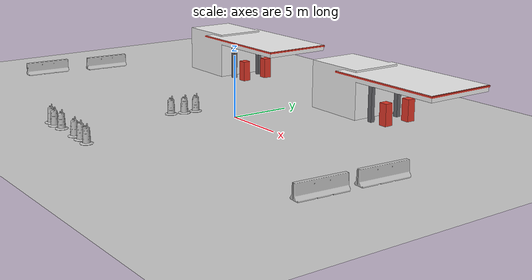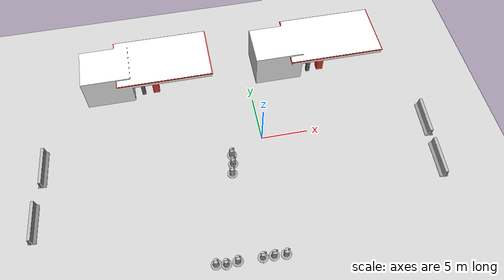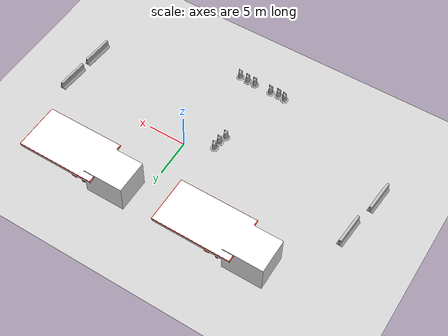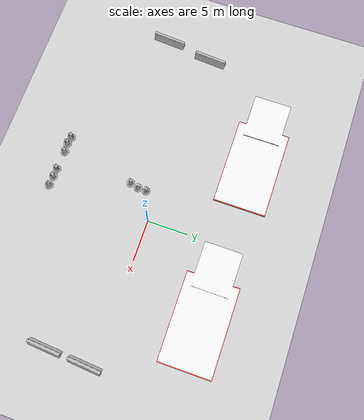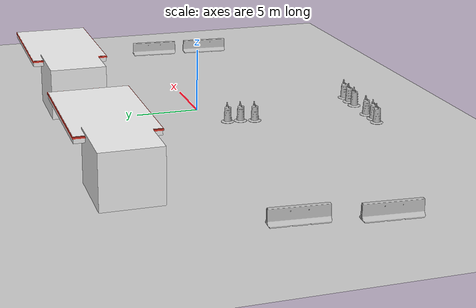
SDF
<sdf version="1.6">
 <world name="default">
  <light name="sun" type="directional">
   <pose>0 0 10 0 -0 0</pose>
   <diffuse>0.8 0.8 0.8 1</diffuse>
   <specular>0.1 0.1 0.1 1</specular>
   <attenuation>
    <range>1000</range>
    <constant>0.9</constant>
    <linear>0.01</linear>
    <quadratic>0.001</quadratic>
   </attenuation>
   <direction>-0.5 0.5 -1</direction>
  </light>
  <model name="ground_plane">
   <static>1</static>
   <link name="link">
    <collision name="collision">
     <geometry><plane><normal>0 0 1</normal><size>100 100</size></plane></geometry>
     <surface><friction><ode><mu>100</mu><mu2>50</mu2></ode></friction></surface>
    </collision>
    <visual name="visual">
     <cast_shadows>0</cast_shadows>
     <geometry><plane><normal>0 0 1</normal><size>100 100</size></plane></geometry>
     <material>
      <script><uri>file://media/materials/scripts/gazebo.material</uri><name>Gazebo/Grey</name></script>
     </material>
    </visual>
   </link>
  </model>
  <gravity>0 0 -9.8</gravity>
  <magnetic_field>6e-06 2.3e-05 -4.2e-05</magnetic_field>
  <atmosphere type="adiabatic"/>
  <physics name="default_physics" default="0" type="ode">
   <max_step_size>0.002</max_step_size>
   <real_time_factor>2</real_time_factor>
   <real_time_update_rate>1000</real_time_update_rate>
  </physics>
  <scene><ambient>0.4 0.4 0.4 1</ambient><background>0.7 0.7 0.7 1</background><shadows>1</shadows></scene>
  <spherical_coordinates>
   <surface_model>EARTH_WGS84</surface_model>
   <latitude_deg>0</latitude_deg>
   <longitude_deg>0</longitude_deg>
   <elevation>0</elevation>
   <heading_deg>0</heading_deg>
  </spherical_coordinates>
  <model name="Gas Station">
   <static>1</static>
   <link name="link">
    <collision name="collision">
     <geometry><mesh><uri>model://gas_station/meshes/gas_station.dae</uri><scale>1 1 1</scale></mesh></geometry>
    </collision>
    <visual name="visual">
     <geometry><mesh><uri>model://gas_station/meshes/gas_station.dae</uri><scale>1 1 1</scale></mesh></geometry>
     <material>
      <script>
       <uri>model://gas_station/materials/scripts</uri>
       <uri>model://gas_station/materials/textures</uri>
       <name>GasStation/Diffuse</name>
      </script>
      <shader type="normal_map_object_space"><normal_map>GasStation_Normal.png</normal_map></shader>
     </material>
    </visual>
   </link>
   <pose>-11.5268 9.6559 0 0 -0 0</pose>
  </model>
  <model name="Gas Station_0">
   <static>1</static>
   <link name="link">
    <collision name="collision">
     <geometry><mesh><uri>model://gas_station/meshes/gas_station.dae</uri><scale>1 1 1</scale></mesh></geometry>
    </collision>
    <visual name="visual">
     <geometry><mesh><uri>model://gas_station/meshes/gas_station.dae</uri><scale>1 1 1</scale></mesh></geometry>
     <material>
      <script>
       <uri>model://gas_station/materials/scripts</uri>
       <uri>model://gas_station/materials/textures</uri>
       <name>GasStation/Diffuse</name>
      </script>
      <shader type="normal_map_object_space"><normal_map>GasStation_Normal.png</normal_map></shader>
     </material>
    </visual>
   </link>
   <pose>7.27153 9.43831 0 0 -0 0</pose>
  </model>
  <model name="Construction Barrel">
   <static>1</static>
   <link name="link">
    <inertial>
     <pose>0 0 0.4 0 -0 0</pose>
     <mass>500</mass>
     <inertia><ixx>51.2096</ixx><iyy>51.2096</iyy><izz>25</izz><ixy>0</ixy><ixz>0</ixz><iyz>0</iyz></inertia>
    </inertial>
    <collision name="collision">
     <geometry>
      <mesh><uri>model://construction_barrel/meshes/construction_barrel.dae</uri><scale>1 1 1</scale></mesh>
     </geometry>
    </collision>
    <visual name="visual">
     <geometry>
      <mesh><uri>model://construction_barrel/meshes/construction_barrel.dae</uri><scale>1 1 1</scale></mesh>
     </geometry>
    </visual>
   </link>
   <pose>-3.48848 -1.45772 0 0 -0 0</pose>
  </model>
  <model name="Construction Barrel_0">
   <static>1</static>
   <link name="link">
    <inertial>
     <pose>0 0 0.4 0 -0 0</pose>
     <mass>500</mass>
     <inertia><ixx>51.2096</ixx><iyy>51.2096</iyy><izz>25</izz><ixy>0</ixy><ixz>0</ixz><iyz>0</iyz></inertia>
    </inertial>
    <collision name="collision">
     <geometry>
      <mesh><uri>model://construction_barrel/meshes/construction_barrel.dae</uri><scale>1 1 1</scale></mesh>
     </geometry>
    </collision>
    <visual name="visual">
     <geometry>
      <mesh><uri>model://construction_barrel/meshes/construction_barrel.dae</uri><scale>1 1 1</scale></mesh>
     </geometry>
    </visual>
   </link>
   <pose>-3.55415 -2.50442 0 0 -0 0</pose>
  </model>
  <model name="Construction Barrel_1">
   <static>1</static>
   <link name="link">
    <inertial>
     <pose>0 0 0.4 0 -0 0</pose>
     <mass>500</mass>
     <inertia><ixx>51.2096</ixx><iyy>51.2096</iyy><izz>25</izz><ixy>0</ixy><ixz>0</ixz><iyz>0</iyz></inertia>
    </inertial>
    <collision name="collision">
     <geometry>
      <mesh><uri>model://construction_barrel/meshes/construction_barrel.dae</uri><scale>1 1 1</scale></mesh>
     </geometry>
    </collision>
    <visual name="visual">
     <geometry>
      <mesh><uri>model://construction_barrel/meshes/construction_barrel.dae</uri><scale>1 1 1</scale></mesh>
     </geometry>
    </visual>
   </link>
   <pose>-3.82484 -3.58423 0 0 -0 0</pose>
  </model>
  <model name="jersey_barrier_clone">
   <static>1</static>
   <link name="link">
    <visual name="visual">
     <geometry>
      <mesh><uri>model://jersey_barrier/meshes/jersey_barrier.dae</uri><scale>1 1 1</scale></mesh>
     </geometry>
    </visual>
    <collision name="upright">
     <pose>0 0 0.5715 0 -0 0</pose>
     <geometry><box><size>4.06542 0.3063 1.143</size></box></geometry>
    </collision>
    <collision name="base">
     <pose>0 0 0.032258 0 -0 0</pose>
     <geometry><box><size>4.06542 0.8107 0.064516</size></box></geometry>
    </collision>
    <collision name="base2">
     <pose>0 0 0.1 0 -0 0</pose>
     <geometry><box><size>4.06542 0.65 0.1</size></box></geometry>
    </collision>
    <collision name="base3">
     <pose>0 0 0.2 0 -0 0</pose>
     <geometry><box><size>4.06542 0.5 0.1</size></box></geometry>
    </collision>
    <collision name="left-angle">
     <pose>0 -0.224 0.2401 0.9 -0 0</pose>
     <geometry><box><size>4.06542 0.5 0.064516</size></box></geometry>
    </collision>
    <collision name="right-angle">
     <pose>0 0.224 0.2401 -0.9 0 0</pose>
     <geometry><box><size>4.06542 0.5 0.064516</size></box></geometry>
    </collision>
   </link>
   <pose>17.7782 -1.0491 0 0 -0 1.5</pose>
  </model>
  <model name="jersey_barrier_clone_0">
   <static>1</static>
   <link name="link">
    <visual name="visual">
     <geometry>
      <mesh><uri>model://jersey_barrier/meshes/jersey_barrier.dae</uri><scale>1 1 1</scale></mesh>
     </geometry>
    </visual>
    <collision name="upright">
     <pose>0 0 0.5715 0 -0 0</pose>
     <geometry><box><size>4.06542 0.3063 1.143</size></box></geometry>
    </collision>
    <collision name="base">
     <pose>0 0 0.032258 0 -0 0</pose>
     <geometry><box><size>4.06542 0.8107 0.064516</size></box></geometry>
    </collision>
    <collision name="base2">
     <pose>0 0 0.1 0 -0 0</pose>
     <geometry><box><size>4.06542 0.65 0.1</size></box></geometry>
    </collision>
    <collision name="base3">
     <pose>0 0 0.2 0 -0 0</pose>
     <geometry><box><size>4.06542 0.5 0.1</size></box></geometry>
    </collision>
    <collision name="left-angle">
     <pose>0 -0.224 0.2401 0.9 -0 0</pose>
     <geometry><box><size>4.06542 0.5 0.064516</size></box></geometry>
    </collision>
    <collision name="right-angle">
     <pose>0 0.224 0.2401 -0.9 0 0</pose>
     <geometry><box><size>4.06542 0.5 0.064516</size></box></geometry>
    </collision>
   </link>
   <pose>17.4775 -5.97574 0 0 -0 1.5</pose>
  </model>
  <model name="jersey_barrier_clone_1">
   <static>1</static>
   <link name="link">
    <visual name="visual">
     <geometry>
      <mesh><uri>model://jersey_barrier/meshes/jersey_barrier.dae</uri><scale>1 1 1</scale></mesh>
     </geometry>
    </visual>
    <collision name="upright">
     <pose>0 0 0.5715 0 -0 0</pose>
     <geometry><box><size>4.06542 0.3063 1.143</size></box></geometry>
    </collision>
    <collision name="base">
     <pose>0 0 0.032258 0 -0 0</pose>
     <geometry><box><size>4.06542 0.8107 0.064516</size></box></geometry>
    </collision>
    <collision name="base2">
     <pose>0 0 0.1 0 -0 0</pose>
     <geometry><box><size>4.06542 0.65 0.1</size></box></geometry>
    </collision>
    <collision name="base3">
     <pose>0 0 0.2 0 -0 0</pose>
     <geometry><box><size>4.06542 0.5 0.1</size></box></geometry>
    </collision>
    <collision name="left-angle">
     <pose>0 -0.224 0.2401 0.9 -0 0</pose>
     <geometry><box><size>4.06542 0.5 0.064516</size></box></geometry>
    </collision>
    <collision name="right-angle">
     <pose>0 0.224 0.2401 -0.9 0 0</pose>
     <geometry><box><size>4.06542 0.5 0.064516</size></box></geometry>
    </collision>
   </link>
   <pose>-22.7739 0.436832 0 0 -0 1.5</pose>
  </model>
  <model name="jersey_barrier_clone_2">
   <static>1</static>
   <link name="link">
    <visual name="visual">
     <geometry>
      <mesh><uri>model://jersey_barrier/meshes/jersey_barrier.dae</uri><scale>1 1 1</scale></mesh>
     </geometry>
    </visual>
    <collision name="upright">
     <pose>0 0 0.5715 0 -0 0</pose>
     <geometry><box><size>4.06542 0.3063 1.143</size></box></geometry>
    </collision>
    <collision name="base">
     <pose>0 0 0.032258 0 -0 0</pose>
     <geometry><box><size>4.06542 0.8107 0.064516</size></box></geometry>
    </collision>
    <collision name="base2">
     <pose>0 0 0.1 0 -0 0</pose>
     <geometry><box><size>4.06542 0.65 0.1</size></box></geometry>
    </collision>
    <collision name="base3">
     <pose>0 0 0.2 0 -0 0</pose>
     <geometry><box><size>4.06542 0.5 0.1</size></box></geometry>
    </collision>
    <collision name="left-angle">
     <pose>0 -0.224 0.2401 0.9 -0 0</pose>
     <geometry><box><size>4.06542 0.5 0.064516</size></box></geometry>
    </collision>
    <collision name="right-angle">
     <pose>0 0.224 0.2401 -0.9 0 0</pose>
     <geometry><box><size>4.06542 0.5 0.064516</size></box></geometry>
    </collision>
   </link>
   <pose>-23.7137 -5.40285 0 0 -0 1.5</pose>
  </model>
  <model name="Construction Barrel_2">
   <static>1</static>
   <link name="link">
    <inertial>
     <pose>0 0 0.4 0 -0 0</pose>
     <mass>500</mass>
     <inertia><ixx>51.2096</ixx><iyy>51.2096</iyy><izz>25</izz><ixy>0</ixy><ixz>0</ixz><iyz>0</iyz></inertia>
    </inertial>
    <collision name="collision">
     <geometry>
      <mesh><uri>model://construction_barrel/meshes/construction_barrel.dae</uri><scale>1 1 1</scale></mesh>
     </geometry>
    </collision>
    <visual name="visual">
     <geometry>
      <mesh><uri>model://construction_barrel/meshes/construction_barrel.dae</uri><scale>1 1 1</scale></mesh>
     </geometry>
    </visual>
   </link>
   <pose>-2.56245 -12.7341 0 0 -0 0</pose>
  </model>
  <model name="Construction Barrel_3">
   <static>1</static>
   <link name="link">
    <inertial>
     <pose>0 0 0.4 0 -0 0</pose>
     <mass>500</mass>
     <inertia><ixx>51.2096</ixx><iyy>51.2096</iyy><izz>25</izz><ixy>0</ixy><ixz>0</ixz><iyz>0</iyz></inertia>
    </inertial>
    <collision name="collision">
     <geometry>
      <mesh><uri>model://construction_barrel/meshes/construction_barrel.dae</uri><scale>1 1 1</scale></mesh>
     </geometry>
    </collision>
    <visual name="visual">
     <geometry>
      <mesh><uri>model://construction_barrel/meshes/construction_barrel.dae</uri><scale>1 1 1</scale></mesh>
     </geometry>
    </visual>
   </link>
   <pose>-1.49781 -12.7551 0 0 -0 0</pose>
  </model>
  <model name="Construction Barrel_3_clone">
   <static>1</static>
   <link name="link">
    <inertial>
     <pose>0 0 0.4 0 -0 0</pose>
     <mass>500</mass>
     <inertia><ixx>51.2096</ixx><iyy>51.2096</iyy><izz>25</izz><ixy>0</ixy><ixz>0</ixz><iyz>0</iyz></inertia>
    </inertial>
    <collision name="collision">
     <geometry>
      <mesh><uri>model://construction_barrel/meshes/construction_barrel.dae</uri><scale>1 1 1</scale></mesh>
     </geometry>
    </collision>
    <visual name="visual">
     <geometry>
      <mesh><uri>model://construction_barrel/meshes/construction_barrel.dae</uri><scale>1 1 1</scale></mesh>
     </geometry>
    </visual>
   </link>
   <pose>-0.343577 -12.8418 0 0 -0 0</pose>
  </model>
  <model name="Construction Barrel_3_clone_0">
   <static>1</static>
   <link name="link">
    <inertial>
     <pose>0 0 0.4 0 -0 0</pose>
     <mass>500</mass>
     <inertia><ixx>51.2096</ixx><iyy>51.2096</iyy><izz>25</izz><ixy>0</ixy><ixz>0</ixz><iyz>0</iyz></inertia>
    </inertial>
    <collision name="collision">
     <geometry>
      <mesh><uri>model://construction_barrel/meshes/construction_barrel.dae</uri><scale>1 1 1</scale></mesh>
     </geometry>
    </collision>
    <visual name="visual">
     <geometry>
      <mesh><uri>model://construction_barrel/meshes/construction_barrel.dae</uri><scale>1 1 1</scale></mesh>
     </geometry>
    </visual>
   </link>
   <pose>-4.93784 -12.656 0 0 -0 0</pose>
  </model>
  <model name="Construction Barrel_3_clone_1">
   <static>1</static>
   <link name="link">
    <inertial>
     <pose>0 0 0.4 0 -0 0</pose>
     <mass>500</mass>
     <inertia><ixx>51.2096</ixx><iyy>51.2096</iyy><izz>25</izz><ixy>0</ixy><ixz>0</ixz><iyz>0</iyz></inertia>
    </inertial>
    <collision name="collision">
     <geometry>
      <mesh><uri>model://construction_barrel/meshes/construction_barrel.dae</uri><scale>1 1 1</scale></mesh>
     </geometry>
    </collision>
    <visual name="visual">
     <geometry>
      <mesh><uri>model://construction_barrel/meshes/construction_barrel.dae</uri><scale>1 1 1</scale></mesh>
     </geometry>
    </visual>
   </link>
   <pose>-6.0482 -12.7391 0 0 -0 0</pose>
  </model>
  <model name="Construction Barrel_3_clone_2">
   <static>1</static>
   <link name="link">
    <inertial>
     <pose>0 0 0.4 0 -0 0</pose>
     <mass>500</mass>
     <inertia><ixx>51.2096</ixx><iyy>51.2096</iyy><izz>25</izz><ixy>0</ixy><ixz>0</ixz><iyz>0</iyz></inertia>
    </inertial>
    <collision name="collision">
     <geometry>
      <mesh><uri>model://construction_barrel/meshes/construction_barrel.dae</uri><scale>1 1 1</scale></mesh>
     </geometry>
    </collision>
    <visual name="visual">
     <geometry>
      <mesh><uri>model://construction_barrel/meshes/construction_barrel.dae</uri><scale>1 1 1</scale></mesh>
     </geometry>
    </visual>
   </link>
   <pose>-6.98317 -12.5842 0 0 -0 0</pose>
  </model>
 </world>
</sdf>
